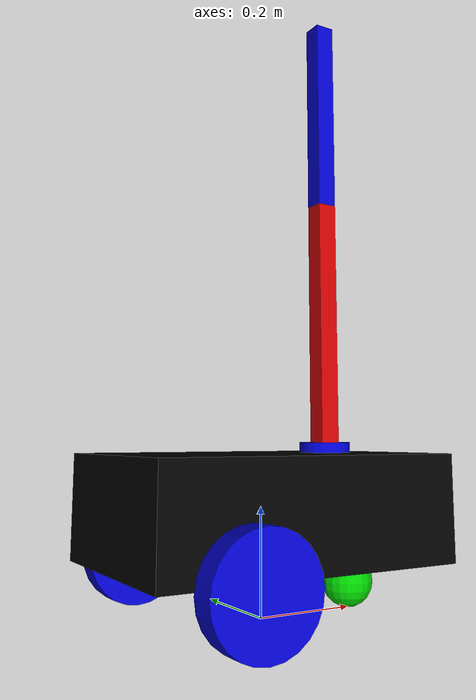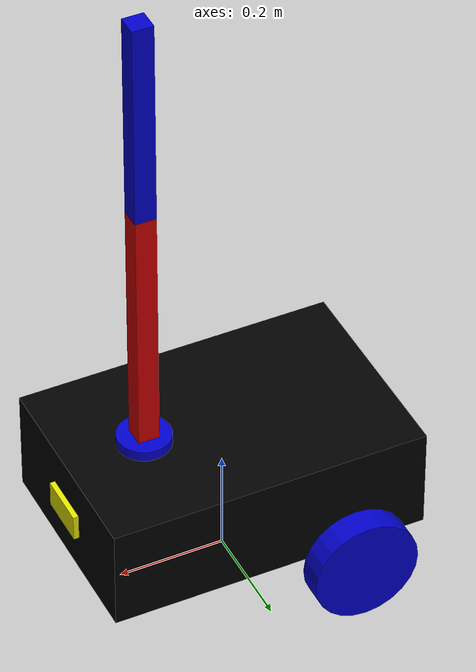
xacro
<?xml version="1.0"?>
<robot name="first_robo"
    xmlns:xacro="http://www.ros.org/wiki/xacro">

    <xacro:include filename="common_properties.xacro" />
    <!-- We include common_properties.xacro (the material xacro file
     in this main xacro file so that we dont have to mention it in
     every "child" xacro file; i.e. mobile_base.xacro etc.) -->
    <xacro:include filename="mobile_base.xacro" />
    <xacro:include filename="mobile_base_gz.xacro" />
    <xacro:include filename="camera.xacro" />

    <xacro:include filename="robot_arm.xacro" />
    <xacro:include filename="robot_arm_gz.xacro" />

    <joint name="robot_arm_mobile_base" type="revolute">
        <origin xyz="${base_length/4} 0.0 ${(base_height + arm_base_link_length) / 2}" rpy="0.0 0.0 0.0"/>
        <parent link="base_link"/>
        <child link="arm_base_link"/>
        <axis xyz="0.0 0.0 1.0"/>
        <limit lower="${-pi / 2.0}" upper="${pi / 2.0}" effort="50.0" velocity="1.0"/>
        <dynamics friction="0.3" damping="0.5" />
    </joint>
</robot>

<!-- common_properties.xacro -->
<robot xmlns:xacro="http://www.ros.org/wiki/xacro">

    <!-- ================= Colors ================= -->

    <material name="grey">
        <color rgba="0.7 0.7 0.7 1.0" />
    </material>

    <material name="green">
        <color rgba="0.0 0.8 0.0 1.0" />
    </material>

    <material name="blue">
        <color rgba="0.0 0.0 0.8 1.0" />
    </material>

    <material name="red">
        <color rgba="0.8 0.0 0.0 1.0" />
    </material>

    <material name="yellow">
        <color rgba="0.9 0.9 0.0 1.0" />
    </material>

    <material name="white">
        <color rgba="1.0 1.0 1.0 1.0" />
    </material>

    <material name="black">
        <color rgba="0.0 0.0 0.0 1.0" />
    </material>

    <!-- ================= Inertials ================= -->

    <xacro:macro name="box_inertial" params="mass l w h o_xyz o_rpy">
        <inertial>
            <origin xyz="${o_xyz}" rpy="${o_rpy}"/>
            <mass value="${mass}"/>
            <inertia ixx="${(mass/12)*(h*h + w*w)}" ixy="0.0" ixz="0.0" iyy="${(mass/12)*(h*h + l*l)}" iyz="0.0" izz="${(mass/12)*(l*l + w*w)}"/>
        </inertial>
    </xacro:macro>

    <xacro:macro name="cylinder_inertial" params="mass r l o_xyz o_rpy">
        <inertial>
            <origin xyz="${o_xyz}" rpy="${o_rpy}"/>
            <mass value="${mass}"/>
            <inertia ixx="${(mass/12)*(3*r*r + l*l)}" ixy="0.0" ixz="0.0" iyy="${(mass/12)*(3*r*r + l*l)}" iyz="0.0" izz="${(mass/2)*r*r}"/>
        </inertial>
    </xacro:macro>

    <xacro:macro name="sphere_inertial" params="mass r o_xyz o_rpy">
        <inertial>
            <origin xyz="${o_xyz}" rpy="${o_rpy}"/>
            <mass value="${mass}"/>
            <inertia ixx="${(2.0/5.0)*mass*r*r}" ixy="0.0" ixz="0.0" iyy="${(2.0/5.0)*mass*r*r}" iyz="0.0" izz="${(2.0/5.0)*mass*r*r}"/>
        </inertial>
    </xacro:macro>

</robot>

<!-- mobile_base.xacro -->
<robot xmlns:xacro="http://www.ros.org/wiki/xacro">

    <xacro:property name="base_length" value="0.6" />
    <xacro:property name="base_width" value="0.4" />
    <xacro:property name="base_height" value="0.2" />
    <xacro:property name="wheel_radius" value="0.1" />
    <xacro:property name="wheel_length" value="0.05" />

    <xacro:macro name="wheel_link" params="prefix">
        <link name="${prefix}_wheel_link">
            <visual>
                <geometry>
                    <cylinder length="${wheel_length}" radius="${wheel_radius}" />
                </geometry>
                <origin xyz="0 0 0" rpy="${pi / 2.0} 0 0" />
                <material name="blue" />
            </visual>

            <collision>
                <geometry>
                    <sphere radius="${wheel_radius}" />
                </geometry>
                <origin xyz="0.0 0.0 0.0" rpy="0.0 0.0 0.0"/>
            </collision>

            <xacro:sphere_inertial mass="1.0" r="${wheel_radius}" o_xyz="0 0 0" o_rpy="${pi / 2.0} 0 0"/>
        </link>
    </xacro:macro>

    <!--                  LINKS                  -->

    <link name="base_footprint"/>

    <link name="base_link">
        <visual>
            <geometry>
                <box size="${base_length} ${base_width} ${base_height}" />
            </geometry>
            <origin xyz="0 0 0" rpy="0 0 0" />
            <material name="black" />
        </visual>

        <xacro:box_inertial mass="5.0" l="${base_length}" w="${base_width}" h="${base_height}" o_xyz="0 0 0" o_rpy="0 0 0"/>

        <collision>
            <geometry>
                <box size="${base_length} ${base_width} ${base_height}" />
            </geometry>
            <origin xyz="0.0 0.0 0.0" rpy="0.0 0.0 0.0"/>
        </collision>

    </link>

    <xacro:wheel_link prefix="right" />
    <xacro:wheel_link prefix="left" />

    <link name="caster_wheel">
        <visual>
            <geometry>
                <sphere radius="${wheel_radius/2}" />
            </geometry>
            <material name="green" />
        </visual>

        <xacro:sphere_inertial mass="1.0" r="${wheel_radius/2}" o_xyz="0 0 0" o_rpy="0 0 0" />

        <collision>
            <origin xyz="0.0 0.0 0.0" rpy="0.0 0.0 0.0"/>
            <geometry>
                <sphere radius="${wheel_radius/2}" />
            </geometry>
        </collision>

    </link>

    <!--                  JOINTS                  -->

    <joint name="base_footprint_base_link" type="fixed">
        <parent link="base_footprint" />
        <child link="base_link" />
        <origin xyz="0 0 ${base_height/2 + wheel_radius}" rpy="0 0 0" />
    </joint>

    <joint name="base_link_right_wheel" type="continuous">
        <parent link="base_link" />
        <child link="right_wheel_link" />
        <origin xyz="${-base_length/4} ${-(base_width/2 + wheel_length)} ${-base_height/2}" rpy="0 0 0" />
        <axis xyz="0 1 0" />
    </joint>

    <joint name="base_link_left_wheel" type="continuous">
        <parent link="base_link" />
        <child link="left_wheel_link" />
        <origin xyz="${-base_length/4} ${(base_width/2 + wheel_length)} ${-base_height/2}" rpy="0 0 0" />
        <axis xyz="0 1 0" />
    </joint>

    <joint name="base_link_caster_wheel" type="fixed">
        <parent link="base_link" />
        <child link="caster_wheel" />
        <origin xyz="${base_length/3.0} 0 ${-(base_height/2 + wheel_radius/2)}" rpy="0 0 0" />
    </joint>

</robot>

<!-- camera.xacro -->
<robot xmlns:xacro="http://www.ros.org/wiki/xacro" >

    <xacro:property name="camera_length" value="0.01" />
    <xacro:property name="camera_width" value="0.1" />
    <xacro:property name="camera_height" value="0.05" />

    <link name="camera_link">
        <visual>
            <origin xyz="0.0 0.0 0.0" rpy="0.0 0.0 0.0"/>
            <geometry>
                <box size="${camera_length} ${camera_width} ${camera_height}"/>
            </geometry>
            <material name="yellow"/>
        </visual>

        <collision>
            <origin xyz="0.0 0.0 0.0" rpy="0.0 0.0 0.0"/>
            <geometry>
                <box size="${camera_length} ${camera_width} ${camera_height}"/>
            </geometry>
        </collision>

        <xacro:box_inertial mass="0.1" l="${camera_length}" w="${camera_width}" h="${camera_height}"
                            o_xyz="0 0 0" o_rpy="0 0 0"/>
    </link>

    <joint name="base_link_camera" type="fixed">
        <origin xyz="${(base_length+camera_length)/2} 0.0 0.0" rpy="0.0 0.0 0.0"/>
        <parent link="base_link"/>
        <child link="camera_link"/>
    </joint>

    <gazebo reference="camera_link">
        <sensor name="camera" type="camera">
            <always_on>true</always_on>
            <visualize>true</visualize>
            <update_rate>30</update_rate>

            <topic>camera/image_raw</topic>

            <camera name="intel_realsense_r200">
            <camera_info_topic>camera/camera_info</camera_info_topic>

            <horizontal_fov>1.047</horizontal_fov>

            <image>
                <width>640</width>
                <height>480</height>
                <format>R8G8B8</format>
            </image>

            <clip>
                <near>0.1</near>
                <far>100.0</far>
            </clip>
            </camera>
        </sensor>
    </gazebo>
</robot>

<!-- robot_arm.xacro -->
<robot xmlns:xacro="http://www.ros.org/wiki/xacro">

    <xacro:property name="arm_base_link_length" value="0.02"/>
    <xacro:property name="arm_base_link_radius" value="0.05"/>

    <xacro:property name="arm_shoulder_link_length" value="0.04"/>
    <xacro:property name="arm_shoulder_link_width" value="0.04"/>
    <xacro:property name="arm_shoulder_link_height" value="0.5"/>

    <xacro:property name="arm_elbow_link_length" value="0.04"/>
    <xacro:property name="arm_elbow_link_width" value="0.04"/>
    <xacro:property name="arm_elbow_link_height" value="0.4"/>

<!--                     LINKS                        -->

    <link name="arm_base_link">
        <visual name="">
            <origin xyz="0.0 0.0 0.0" rpy="0.0 0.0 0.0"/>
            <geometry>
                <cylinder radius="${arm_base_link_radius}" length="${arm_base_link_length}"/>
            </geometry>
            <material name="blue"/>
        </visual>

        <collision>
            <origin xyz="0.0 0.0 0.0" rpy="0.0 0.0 0.0"/>
            <geometry>
                <cylinder radius="${arm_base_link_radius}" length="${arm_base_link_length}"/>
            </geometry>
        </collision>

        <xacro:sphere_inertial mass="1.0" r="${arm_base_link_radius}" o_xyz="0 0 0" o_rpy="0 0 0" />
    </link>

    <link name="arm_shoulder_link">
        <visual name="">
            <origin xyz="0.0 0.0 ${arm_shoulder_link_height / 2.0}" rpy="0.0 0.0 0.0"/>
            <geometry>
                <box size="${arm_shoulder_link_length} ${arm_shoulder_link_width} ${arm_shoulder_link_height}"/>
            </geometry>
            <material name="red"/>
        </visual>

        <collision>
            <origin xyz="0.0 0.0 ${arm_shoulder_link_height / 2.0}" rpy="0.0 0.0 0.0"/>
            <geometry>
                <box size="${arm_shoulder_link_length} ${arm_shoulder_link_width} ${arm_shoulder_link_height}"/>
            </geometry>
        </collision>

        <xacro:box_inertial mass="1.0"
                            l="${arm_shoulder_link_length}"
                            w="${arm_shoulder_link_width}"
                            h="${arm_shoulder_link_height}"
                            o_xyz="0.0 0.0 ${arm_shoulder_link_height / 2.0}"
                            o_rpy="0 0 0" />

    </link>

    <link name="arm_elbow_link">
        <visual name="">
            <origin xyz="0.0 0.0 ${arm_elbow_link_height/2}" rpy="0.0 0.0 0.0"/>
            <geometry>
                <box size="${arm_elbow_link_length} ${arm_elbow_link_width} ${arm_elbow_link_height}"/>
            </geometry>
            <material name="blue"/>
        </visual>

        <collision>
            <origin xyz="0.0 0.0 ${arm_elbow_link_height/2}" rpy="0.0 0.0 0.0"/>
            <geometry>
                <box size="${arm_elbow_link_length} ${arm_elbow_link_width} ${arm_elbow_link_height}"/>
            </geometry>
        </collision>

        <xacro:box_inertial mass="0.5"
                            l="${arm_elbow_link_length}"
                            w="${arm_elbow_link_width}"
                            h="${arm_elbow_link_height}"
                            o_xyz="0.0 0.0 ${arm_elbow_link_height/2}"
                            o_rpy="0 0 0" />
    </link>

<!--                                              JOINTS                                          -->

    <joint name="arm_base_arm_shoulder" type="revolute">
        <origin xyz="0.0 0.0 0.0" rpy="0.0 0.0 0.0"/>
        <parent link="arm_base_link"/>
        <child link="arm_shoulder_link"/>
        <axis xyz="0.0 1.0 0.0"/>
        <limit lower="0.0" upper="${pi / 2.0}" effort="100.0" velocity="1.0"/>
        <dynamics friction="0.3" damping="0.5" />
    </joint>

    <joint name="arm_shoulder_arm_elbow" type="revolute">
        <origin xyz="0.0 0.0 ${arm_shoulder_link_height}" rpy="0.0 0.0 0.0"/>
        <parent link="arm_shoulder_link"/>
        <child link="arm_elbow_link"/>
        <axis xyz="0.0 1.0 0.0"/>
        <limit lower="0.0" upper="${pi / 2.0}" effort="100.0" velocity="1.0"/>
        <dynamics friction="0.3" damping="0.5" />
    </joint>
</robot>
